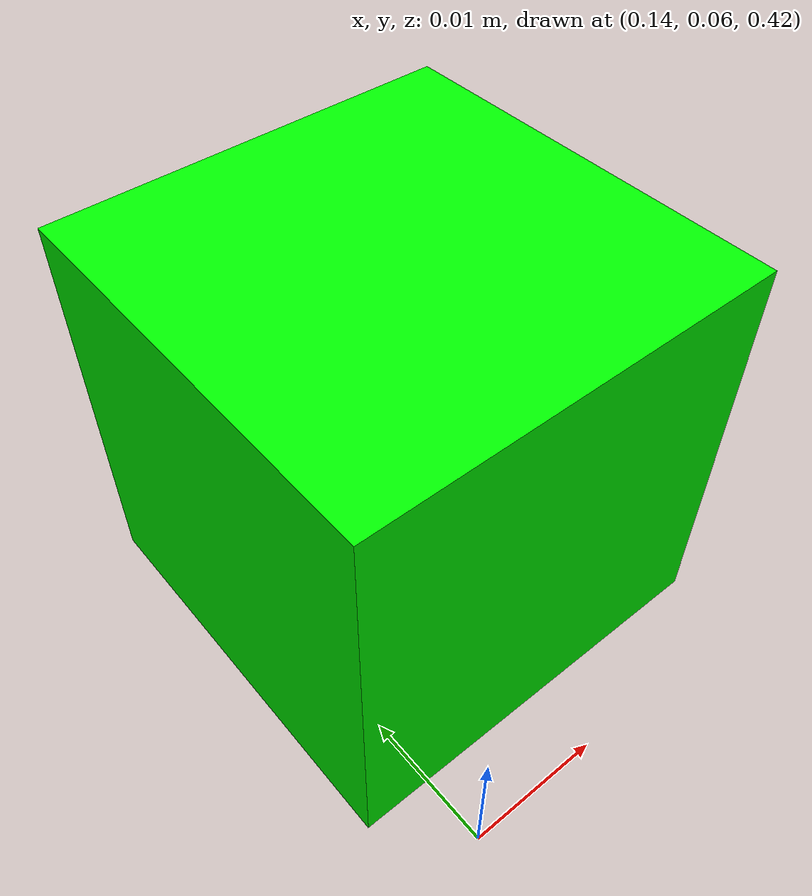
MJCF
<mujoco>
    <worldbody>
        <body name="green_block" pos="0.15 0.08 0.435">
            <joint name="green_block:joint" type="free" damping="5" frictionloss="1"/>
            <geom name="green_block" size="0.015 0.015 0.015" rgba="0 1 0 1" type="box" conaffinity="0" contype="0" group="1"/>
            <geom name="green_block_collision" size="0.015 0.015 0.015" type="box" conaffinity="1" contype="1" condim="4" group="4" mass="0.01" friction="1 1 1" solref="0.001 1" solimp="1 0.99 0.001"/>
            <site name="green_block" pos="0 0 0" size="0.015 0.015 0.015" rgba="0 1 0 0.5" type="sphere" />
        </body>
    </worldbody>
</mujoco>
